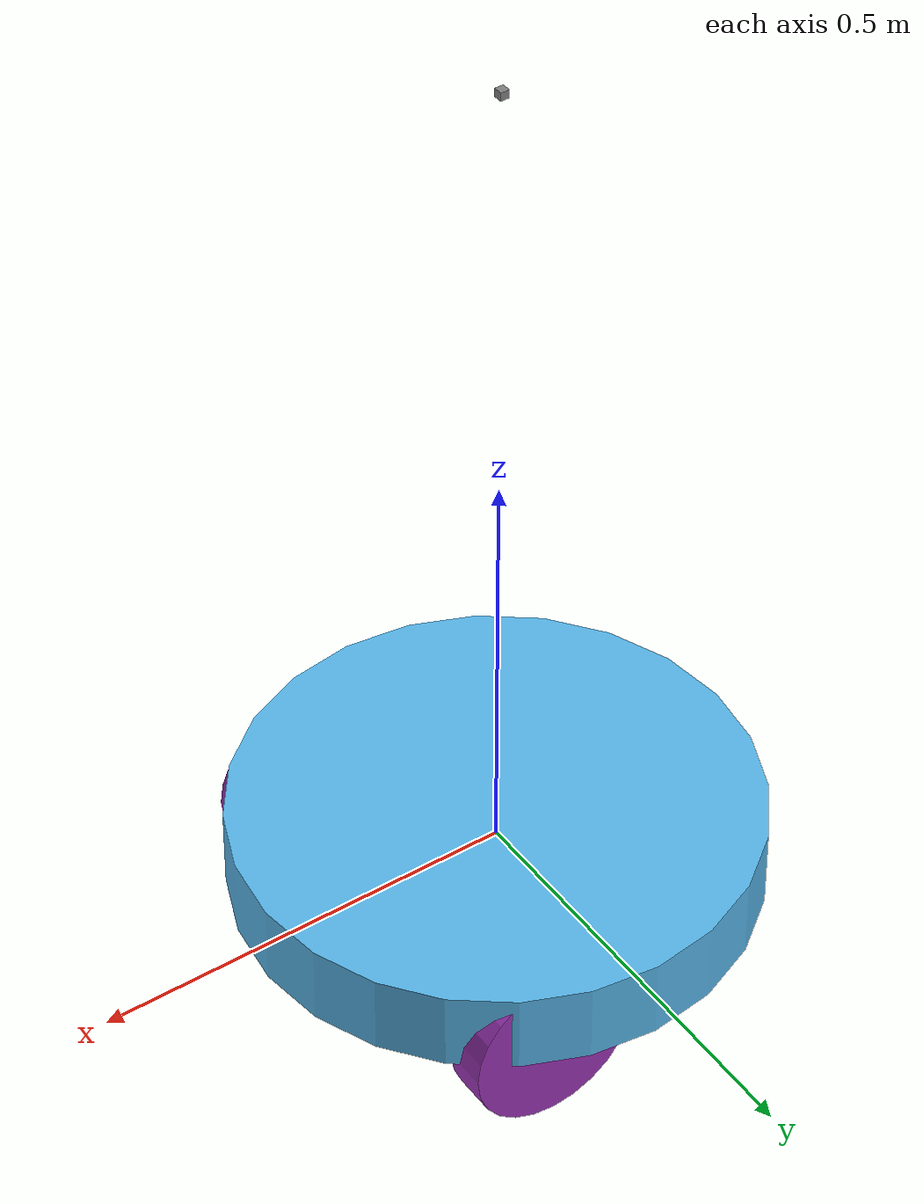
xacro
<robot name="mr" xmlns:xacro="http://www.ros.org/wiki/xacro">

  <xacro:property name="PI" value="3.1415926535897931" />
  <xacro:property name="BASE_LINK_WIDTH" value="0.1" />
  <xacro:property name="BASE_LINK_RADIUS" value="0.3" />

  <xacro:property name="BASE_LINK_MASS" value="30.0" />

  <xacro:property name="WHEEL_LENGTH" value="0.05" />
  <xacro:property name="WHEEL_RADIUS" value="0.1" />

  <xacro:property name="WHEEL_MASS" value="2.0" />

  <xacro:property name="BASE_LINK_TO_WHEEL_X" value="${BASE_LINK_RADIUS - 0.2}" />
  <xacro:property name="BASE_LINK_TO_WHEEL_Y" value="${BASE_LINK_RADIUS -0.07}" />
  <xacro:property name="BASE_LINK_TO_WHEEL_Z" value="${-BASE_LINK_WIDTH/2}" />

  <xacro:property name="CASTER_WHEEL_RADIUS" value="0.15" />

  <xacro:property name="CASTER_WHEEL_X" value="-0.18" />
  <xacro:property name="CASTER_WHEEL_Y" value="0" />
  <xacro:property name="CASTER_WHEEL_Z" value="${-BASE_LINK_WIDTH/2}" />

  <xacro:property name="camera_link" value="0.05" />

  <xacro:include filename="$(find mr_description)/urdf/mr.urdf" />

  <xacro:include filename="$(find mr_description)/urdf/gazebo.xacro" />

  <xacro:include filename="$(find mr_description)/urdf/sensors.xacro" />

</robot>

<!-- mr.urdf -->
<robot name="mr"
  xmlns:xacro="http://www.ros.org/wiki/xacro">

  <material name="grey">
    <color rgba="128 128 128 1"/>
  </material>

  <!-- Define inertial macro -->
  <xacro:macro name="cuboid_inertia" params="XYZ RPY mass depth width height">
    <inertial>
      <origin xyz="${XYZ}" rpy="${RPY}" />
      <mass value="${mass}" />
      <inertia ixx="${mass*1/12*(width*width+height*height)}" ixy="0.0" ixz="0.0" iyy="${mass*1/12*(depth*depth+height*height)}" iyz="0.0" izz="${mass*1/12*(depth*depth+width*width)}" />
    </inertial>
  </xacro:macro>

  <xacro:macro name="cylinder_inertia" params="XYZ RPY mass radius length">
    <inertial>
      <origin xyz="${XYZ}" rpy="${RPY}" />
      <mass value="${mass}" />
      <inertia ixx="${mass*1.0/12.0*(3*radius*radius + length*length)}" ixy="0.0" ixz="0.0" iyy="${mass*1.0/12.0*(3*radius*radius + length*length)}" iyz="0.0" izz="${mass/2.0*(radius*radius)}" />
    </inertial>
  </xacro:macro>

  <xacro:macro name="sphere_inertia" params="XYZ RPY mass radius">
    <inertial>
      <origin xyz="${XYZ}" rpy="${RPY}" />
      <mass value="${mass}" />
      <inertia ixx="${mass*2.0/5.0*radius*radius}" ixy="0.0" ixz="0.0" iyy="${mass*2.0/5.0*radius*radius}" iyz="0.0" izz="${mass*2.0/5.0*radius*radius}" />
    </inertial>
  </xacro:macro>

  <!-- links macro -->
  <xacro:macro name="cuboid_link" params="name XYZ RPY mass depth width height color">
    <link name="${name}">
      <visual>
        <geometry>
          <box size="${depth} ${width} ${height} "/>
        </geometry>
        <origin rpy="${RPY}" xyz="${XYZ}"/>
        <material name="${color}"/>
      </visual>

      <collision>
        <geometry>
          <box size="${depth} ${width} ${height} "/>
        </geometry>
        <origin rpy="${RPY}" xyz="${XYZ}"/>
      </collision>

      <xacro:cuboid_inertia XYZ="${XYZ}" RPY="${RPY}" mass="${mass}" depth="${depth}" width="${width}" height="${height}"/>
    </link>
  </xacro:macro>

  <xacro:macro name="cylinder_link" params="name XYZ RPY mass radius length color">
    <link name="${name}">
      <visual>
        <geometry>
          <cylinder length="${length}" radius="${radius}"/>
        </geometry>
        <origin rpy="${RPY}" xyz="${XYZ}"/>
        <!--material name="${color}"/-->
      </visual>

      <collision>
        <geometry>
          <cylinder length="${length}" radius="${radius}"/>
        </geometry>
        <origin rpy="${RPY}" xyz="${XYZ}"/>
      </collision>

      <xacro:cylinder_inertia XYZ="${XYZ}" RPY="${RPY}" mass="${mass}" radius="${radius}" length="${length}"/>
    </link>
  </xacro:macro>

  <xacro:macro name="sphere_link" params="name XYZ RPY mass radius color">
    <link name="${name}">
      <visual>
        <geometry>
          <sphere radius="${radius}"/>
        </geometry>
        <origin rpy="${RPY}" xyz="${XYZ}"/>
        <material name="${color}"/>
      </visual>

      <collision>
        <geometry>
          <sphere radius="${radius}"/>
        </geometry>
        <origin rpy="${RPY}" xyz="${XYZ}"/>
      </collision>

      <xacro:sphere_inertia XYZ="${XYZ}" RPY="${RPY}" mass="${mass}" radius="${radius}"/>
    </link>
  </xacro:macro>

  <!-- Definition of the shape of the robot -->
  <link name="base_link"/>

  <xacro:cylinder_link name="base_link_r" XYZ="0 0 0" RPY="0 0 0" mass="${BASE_LINK_MASS}" radius="${BASE_LINK_RADIUS}" length="${BASE_LINK_WIDTH}" color="grey"/>

  <joint name="base_link_to_real" type="fixed">
    <parent link="base_link"/>
    <child link="base_link_r"/>
    <origin xyz="0 0 0" rpy="0 0 0"/>
  </joint>

    <link name="bumper_sensor">
      <collision name="bumper_sensor_collision">
        <geometry>
          <cylinder length="${BASE_LINK_WIDTH}" radius="${BASE_LINK_RADIUS + 0.025}"/>
        </geometry>
        <origin rpy="0 0 0" xyz="0 0 0"/>
      </collision>

      <visual>
        <geometry>
          <cylinder length="${BASE_LINK_WIDTH}" radius="${BASE_LINK_RADIUS}"/>
        </geometry>
        <origin rpy="0 0 0" xyz="0 0 0"/>
      </visual>

      <xacro:cylinder_inertia XYZ="0 0 0" RPY="0 0 0" mass="0.1" radius="${BASE_LINK_RADIUS}" length="${BASE_LINK_WIDTH}"/>
     </link>

  <joint name="base_link_to_bump" type="fixed">
    <parent link="base_link"/>
    <child link="bumper_sensor"/>
    <origin xyz="0 0 0" rpy="0 0 0"/>
  </joint>

  <xacro:cylinder_link name="lwheel" XYZ="0 0 0" RPY="${PI/2} 0 ${PI}" mass="${WHEEL_MASS}" radius="${WHEEL_RADIUS}" length="${WHEEL_LENGTH}" color="grey"/>

  <joint name="base_to_lwheel" type="continuous">
    <parent link="base_link"/>
    <child link="lwheel"/>
    <axis xyz="0 1 0" />
    <origin xyz="${BASE_LINK_TO_WHEEL_X} ${BASE_LINK_TO_WHEEL_Y} ${BASE_LINK_TO_WHEEL_Z}" rpy="0 0 0"/>
  </joint>

  <xacro:cylinder_link name="rwheel" XYZ="0 0 0" RPY="${PI/2} 0 0" mass="${WHEEL_MASS}" radius="${WHEEL_RADIUS}" length="${WHEEL_LENGTH}" color="grey"/>

  <joint name="base_to_rwheel" type="continuous">
    <parent link="base_link"/>
    <child link="rwheel"/>
    <axis xyz="0 1 0" />
    <origin xyz="${BASE_LINK_TO_WHEEL_X} ${-BASE_LINK_TO_WHEEL_Y} ${BASE_LINK_TO_WHEEL_Z}" rpy="0 0 0"/>
  </joint>

  <xacro:sphere_link name="caster_part" XYZ="0 0 0" RPY="0 0 0" mass="${WHEEL_MASS}" radius="${WHEEL_RADIUS}" color="grey"/>
  <joint name="base_link_to_caster" type="fixed">
    <parent link="base_link"/>
    <child link="caster_part"/>
    <origin xyz="${CASTER_WHEEL_X} ${CASTER_WHEEL_Y} ${CASTER_WHEEL_Z}" rpy="0 0 0"/>
  </joint>

  <xacro:cuboid_link name="camera" XYZ="0 0 0" RPY="0 0 0" mass="0.01" depth="0.01" width="0.01" height="0.01" color="grey"/>
  <joint name="base_link_to_camera" type="fixed">
    <parent link="base_link"/>
    <child link="camera"/>
    <origin xyz="0 0 1" rpy="0 0 0"/>
  </joint>

</robot>
